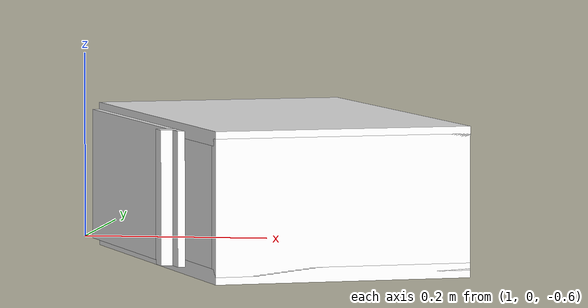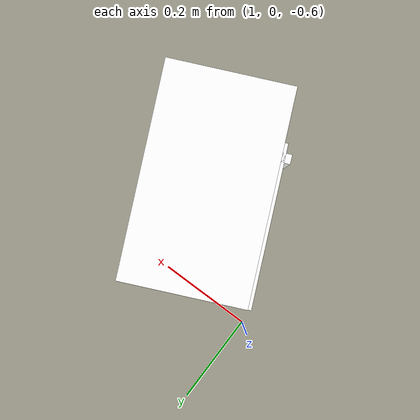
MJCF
<mujoco model="cabinet">
    <compiler angle="radian" eulerseq='zxy' />
    <option gravity = "0 0 0" />
    <option>
        <flag contact = "disable"/>
    </option>
    <statistic	extent="1.0" center="0.0 0.0 0.0"/>
    <visual>
        <map fogstart="3" fogend="5" force="0.1" znear=" 0.100000 " zfar=" 12.000000 "/>
    </visual>
    <size njmax="500" nconmax="100" />
    <actuator>
        <velocity joint="bottom_left_hinge" name="viva_revolution" kv='10'></velocity>
    </actuator>
    <asset>
        <texture builtin="flat" name="tabletex" height="32" width="32" rgb1="1 1 1" type="cube"></texture>
        <texture builtin="flat" name="objtex" height="32" width="32" rgb1="1 1 1" type="cube"></texture>
        <texture builtin="flat" name="handletex" height="32" width="32" rgb1="1 1 1" type="cube"></texture>
        <texture builtin="flat" name="wallpaper" height="32" width="32" rgb1="1 0 0" type="cube"></texture>
        <texture builtin="flat" name="kp" height="32" width="32" rgb1="1 1 1" type="cube"></texture>
        <material name="geomTable" shininess="0.03" specular="0.75" texture="tabletex"></material>
        <material name="geomObj" shininess="0.03" specular="0.75" texture="objtex"></material>
        <material name="geomHandle" shininess="0.03" specular="0.75" texture="handletex"></material>
        <material name="ax" shininess="0.03" specular="0.75" texture="wallpaper"></material>
        <material name="bg" shininess="0.03" specular="0.75" texture="wallpaper"></material>
        <material name="geomKeypad" shininess="0.03" specular="0.75" texture="kp"></material>
    </asset>
    <worldbody>
        <body name="cabinet_bottom" pos= " 1.238732 -0.189267 -0.598258 "  quat= " -0.210454 0.000000 0.000000 0.977604" >
            <inertial pos="0 0 0" mass="1" diaginertia="1 1 1" />
            <geom size= " 0.135038 0.228632 0.007579 "  type="box" material="geomObj" name="b"/>
            <body name="cabinet_left" pos= " 0.000000 -0.221053 0.069949 " >
                <inertial pos="0 0 0" mass="1" diaginertia="1 1 1" />
                <geom size= " 0.135038 0.007579 0.069949 "  type="box" material="geomObj" name="c" />
            </body>
            <body name="cabinet_right" pos= " 0.000000 0.221053 0.069949 " >
                <inertial pos="0 0 0" mass="1" diaginertia="1 1 1" />
                <geom size= " 0.135038 0.007579 0.069949 "  type="box" material="geomObj" name="d" />
            </body>
            <body name="cabinet_top" pos= " 0.000000 0.000000 0.139897 " >
                <inertial pos="0 0 0" mass="1" diaginertia="1 1 1" />
                <geom size= " 0.135038 0.228632 0.007579 "  type="box" material="geomObj" name="e"/>
            </body>
            <body name="cabinet_back" pos= " -0.127459 0.000000 0.069949 "  >
                <inertial pos="0 0 0" mass="1" diaginertia="1 1 1" />
                <geom size= " 0.007579 0.228632 0.069949 "  type="box" material="geomObj" name="f" />
            </body>
            <body name="cabinet_keypad" pos= " 0.007579 0.170474 0.069949 " >
                <inertial pos="0 0 0" mass="1" diaginertia="1 1 1" />
                <geom size= " 0.127459 0.057158 0.062370 "  type="box" material="geomKeypad" name="keypizzlemynizzle" />
            </body>
            <body name="cabinet_left_hinge" pos= " 0.135038 -0.228632 0.069949 " >
                <inertial pos= " 0.000000 0.171474 0.000000 "  mass="1" diaginertia="1 1 1" />
                <joint name="bottom_left_hinge" type="hinge" pos="0 0 0" axis="0 0 1" limited="true" range= "-2.3 0"  />
                <geom size= " 0.007579 0.171474 0.069949 "  pos= " 0.000000 0.171474 0.000000 "  type="box" material="geomObj" name="g"/>
                <body name="handle_link" pos= " 0.010000 0.312947 0.000000 " >
                    <inertial pos="0 0 0" mass="1" diaginertia="1 1 1" />
                    <geom size= " 0.010000 0.010000 0.069949 "  type="box" material="geomHandle" name="h"/>
                </body>
            </body>
        </body>
        <body name="external_camera_body_0" pos="0.0 0 0.00" >
            <camera euler="-1.57 1.57 0.0" fovy=" 54.280851 " name="external_camera_0" pos="0.0 0 0"></camera>
            <inertial pos= " 0.00 0.0 0.000000 " mass="1" diaginertia="1 1 1" />
            <joint name="cam_j" pos="0.0 0 0" axis = "1 0 0" type="free" />
        </body>
    </worldbody>
</mujoco>
